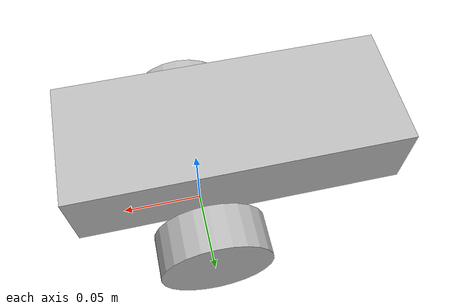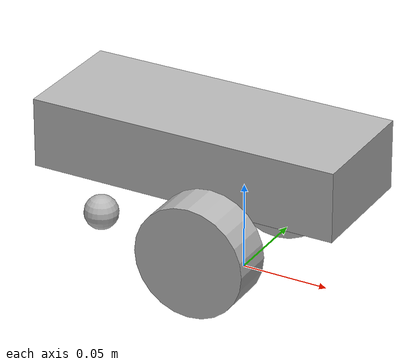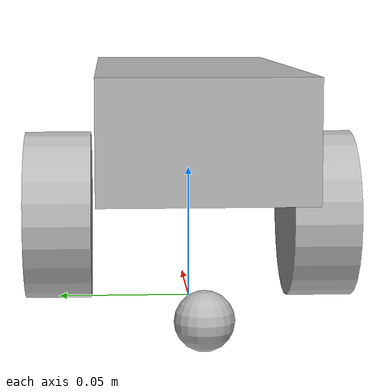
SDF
<?xml version='1.0'?>
<sdf version='1.6'>
    <model name="picar">
        <static>false</static>

        <link name="chassis">
            <inertial>
                <mass>2</mass>
            </inertial>
            <pose>-0.02 0.0 0.07 0 0 0</pose>

            <collision name="chassis_collision">
                <geometry>
                    <box>
                        <size>0.18 0.07 0.04</size>
                    </box>
                </geometry>
            </collision>

            <visual name="chassis_visual">
                <geometry>
                    <box>
                        <size>0.18 0.07 0.04</size>
                    </box>
                </geometry>
            </visual>

            <collision name="caster_collision">
                <pose>-0.07 0 -0.06 0 0 0</pose>
                <geometry>
                    <sphere>
                        <radius>.01</radius>
                    </sphere>
                </geometry>

                <surface>
                    <friction>
                        <ode>
                            <mu>0</mu>
                            <mu2>0</mu2>
                            <slip1>1.0</slip1>
                            <slip2>1.0</slip2>
                        </ode>
                    </friction>
                </surface>
            </collision>

            <visual name="caster_visual">
                <pose>-0.07 0 -0.06 0 0 0</pose>
                <geometry>
                    <sphere>
                        <radius>0.01</radius>
                    </sphere>
                </geometry>
            </visual>
        </link>

    <link name="left_wheel">
        <inertial>
            <mass>0.1</mass>
        </inertial>

        <pose>0 0.05 0.032 1.5708 0 0</pose>

        <collision name="left_wheel_collision">
            <geometry>
                <cylinder>
                    <radius>0.032</radius>
                    <length>0.025</length>
                </cylinder>
            </geometry>
        </collision>

        <visual name="left_wheel_visual">
            <geometry>
                <cylinder>
                    <radius>0.032</radius>
                    <length>0.025</length>
                </cylinder>
            </geometry>
        </visual>

    </link>

    <link name="right_wheel">
        <inertial>
            <mass>0.1</mass>
        </inertial>
        <pose>0 -0.05 0.032 1.5708 0 0</pose>

        <collision name="right_wheel_collision">
            <geometry>
                <cylinder>
                    <radius>0.032</radius>
                    <length>0.025</length>
                </cylinder>
            </geometry>
        </collision>

        <visual name="right_wheel_visual">
            <geometry>
                <cylinder>
                    <radius>0.032</radius>
                    <length>0.025</length>
                </cylinder>
            </geometry>
        </visual>

    </link>

    <joint type="revolute" name="left_wheel_joint">
        <parent>chassis</parent>
        <child>left_wheel</child>
        <axis>
            <xyz>0 1 0</xyz>
            <use_parent_model_frame>1</use_parent_model_frame>
        </axis>
    </joint>

    <joint type="revolute" name="right_wheel_joint">
        <parent>chassis</parent>
        <child>right_wheel</child>
        <axis>
            <xyz>0 1 0</xyz>
            <use_parent_model_frame>1</use_parent_model_frame>
        </axis>
    </joint>

    <link name="camera_link">
        <inertial>
            <mass>0.01</mass>
        </inertial>
        <pose>0.064 0 0.11 0 0.2 0</pose>
        <sensor name="picamera" type="camera">
            <camera name="head">
                <horizontal_fov>2.094</horizontal_fov>
                <image>
                    <width>640</width>
                    <height>480</height>
                    <format>R8G8B8</format>
                </image>
                <clip>
                    <near>0.02</near>
                    <far>100</far>
                </clip>
                <noise>
                    <type>gaussian</type>
                    <mean>0.0</mean>
                    <stddev>0.007</stddev>
                </noise>
                <distortion>
                    <k1>0.0</k1>
                    <k2>0.0</k2>
                    <p1>0.0</p1>
                    <p2>0.0</p2>
                    <k3>0</k3>
                </distortion>

                <lens>
                    <type>equidistant</type>
                    <scale_to_hfov>false</scale_to_hfov>
                </lens>
            </camera>
            <always_on>1</always_on>
            <update_rate>30</update_rate>
            <visualize>1</visualize>

            <plugin name="camera_controller" filename="libgazebo_ros_camera.so">
                <alwaysOn>1</alwaysOn>
                <updateRate>0.0</updateRate>
                <cameraName>picamera</cameraName>
                <imageTopicName>image</imageTopicName>
                <distortionK1>0.0</distortionK1>
                <distortionK2>0.0</distortionK2>
                <distortionT1>0.0</distortionT1>
                <distortionT2>0.0</distortionT2>
            </plugin>
        </sensor>
    </link>

    <joint type="fixed" name="camera_joint">
        <child>camera_link</child>
        <parent>chassis</parent>
    </joint>

    <plugin name="differential_drive_controller" filename="libgazebo_ros_diff_drive.so">
        <alwaysOn>true</alwaysOn>
        <legacyMode>false</legacyMode>
        <updateRate>30</updateRate>
        <leftJoint>left_wheel_joint</leftJoint>
        <rightJoint>right_wheel_joint</rightJoint>
        <wheelSeparation>0.01</wheelSeparation>
        <wheelDiameter>0.064</wheelDiameter>
        <torque>20</torque>
        <commandTopic>cmd_vel</commandTopic>
        <odometryTopic>odom</odometryTopic>
        <odometryFrame>odom</odometryFrame>
    </plugin>

    </model>
</sdf>
